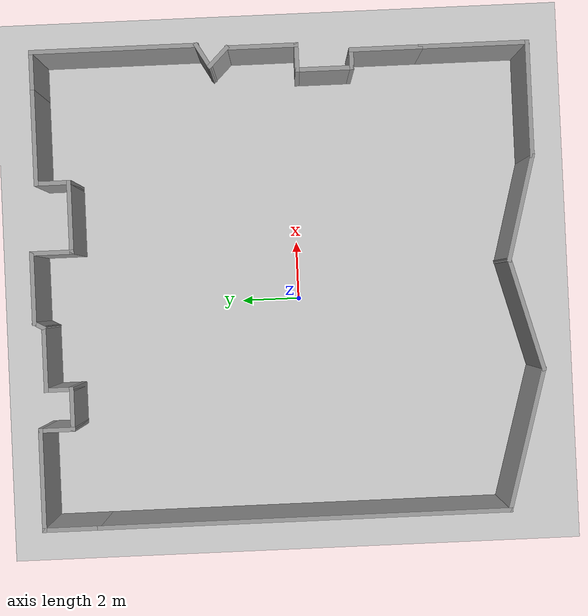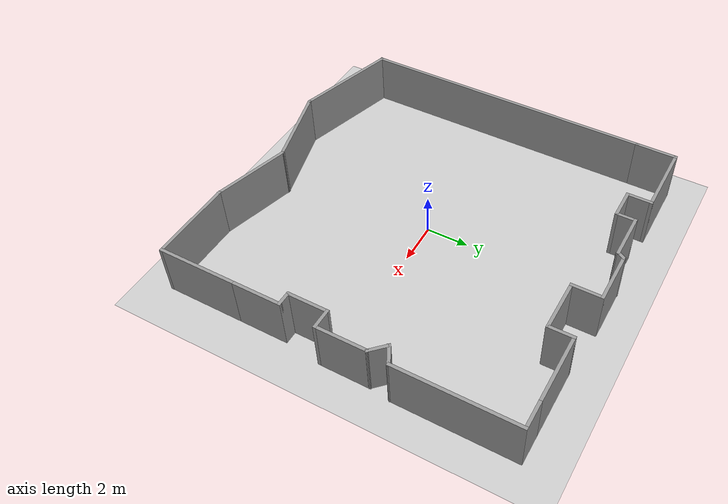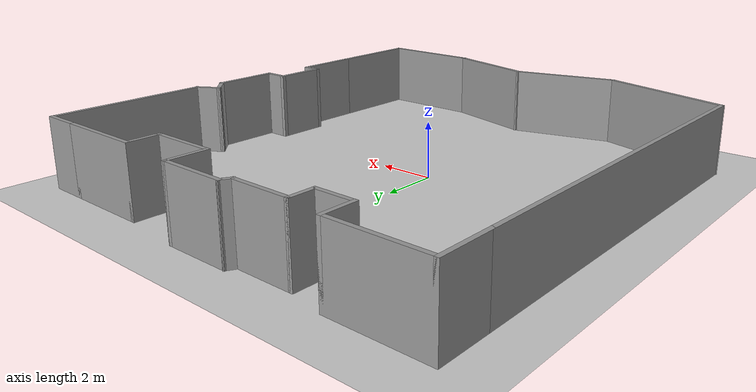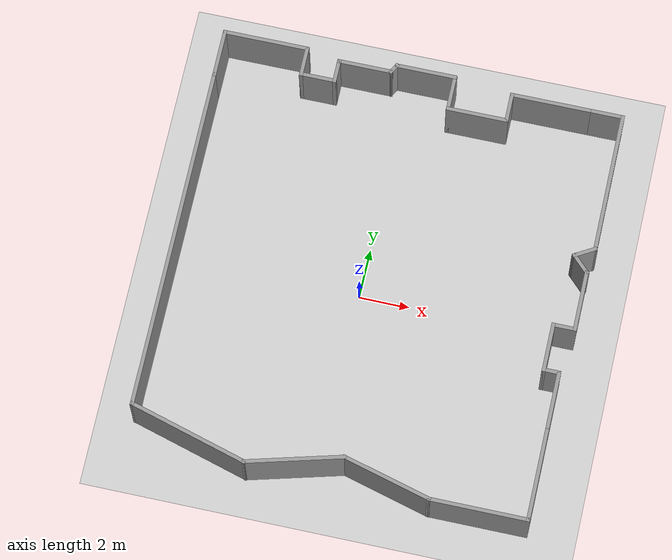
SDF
<sdf version="1.6">
 <world name="default">
  <light name="sun" type="directional">
   <pose>0 0 10 0 -0 0</pose>
   <diffuse>0.8 0.8 0.8 1</diffuse>
   <specular>0.2 0.2 0.2 1</specular>
   <attenuation>
    <range>1000</range>
    <constant>0.9</constant>
    <linear>0.01</linear>
    <quadratic>0.001</quadratic>
   </attenuation>
   <direction>-0.5 0.1 -0.9</direction>
  </light>
  <model name="ground_plane">
   <static>1</static>
   <link name="link">
    <collision name="collision">
     <geometry><plane><normal>0 0 1</normal><size>100 100</size></plane></geometry>
     <surface><friction><ode><mu>100</mu><mu2>50</mu2></ode></friction></surface>
    </collision>
    <visual name="visual">
     <cast_shadows>0</cast_shadows>
     <geometry><plane><normal>0 0 1</normal><size>100 100</size></plane></geometry>
     <material>
      <script><uri>file://media/materials/scripts/gazebo.material</uri><name>Gazebo/Grey</name></script>
     </material>
    </visual>
   </link>
  </model>
  <gravity>0 0 -9.8</gravity>
  <magnetic_field>6e-06 2.3e-05 -4.2e-05</magnetic_field>
  <atmosphere type="adiabatic"/>
  <physics name="default_physics" default="0" type="ode">
   <max_step_size>0.001</max_step_size>
   <real_time_factor>1</real_time_factor>
   <real_time_update_rate>1000</real_time_update_rate>
  </physics>
  <scene><ambient>0.4 0.4 0.4 1</ambient><background>0.7 0.7 0.7 1</background><shadows>1</shadows></scene>
  <audio><device>default</device></audio>
  <spherical_coordinates>
   <surface_model>EARTH_WGS84</surface_model>
   <latitude_deg>0</latitude_deg>
   <longitude_deg>0</longitude_deg>
   <elevation>0</elevation>
   <heading_deg>0</heading_deg>
  </spherical_coordinates>
  <model name="workplace">
   <pose>0.646695 0.419869 0 0 -0 0</pose>
   <link name="Wall_36">
    <collision name="Wall_36_Collision">
     <geometry><box><size>14 0.15 2.5</size></box></geometry>
     <pose>0 0 1.25 0 -0 0</pose>
    </collision>
    <visual name="Wall_36_Visual">
     <pose>0 0 1.25 0 -0 0</pose>
     <geometry><box><size>14 0.15 2.5</size></box></geometry>
     <material>
      <script><uri>file://media/materials/scripts/gazebo.material</uri><name>Gazebo/Grey</name></script>
      <ambient>1 1 1 1</ambient>
     </material>
     <meta><layer>0</layer></meta>
    </visual>
    <pose>-8.06738 -0.28762 0 0 -0 1.5708</pose>
   </link>
   <link name="Wall_37">
    <collision name="Wall_37_Collision">
     <geometry><box><size>2 0.15 2.5</size></box></geometry>
     <pose>0 0 1.25 0 -0 0</pose>
    </collision>
    <visual name="Wall_37_Visual">
     <pose>0 0 1.25 0 -0 0</pose>
     <geometry><box><size>2 0.15 2.5</size></box></geometry>
     <material>
      <script><uri>file://media/materials/scripts/gazebo.material</uri><name>Gazebo/Grey</name></script>
      <ambient>1 1 1 1</ambient>
     </material>
     <meta><layer>0</layer></meta>
    </visual>
    <pose>-8.06738 7.56238 0 0 -0 1.5708</pose>
   </link>
   <link name="Wall_38">
    <collision name="Wall_38_Collision">
     <geometry><box><size>3.5 0.15 2.5</size></box></geometry>
     <pose>0 0 1.25 0 -0 0</pose>
    </collision>
    <visual name="Wall_38_Visual">
     <pose>0 0 1.25 0 -0 0</pose>
     <geometry><box><size>3.5 0.15 2.5</size></box></geometry>
     <material>
      <script><uri>file://media/materials/scripts/gazebo.material</uri><name>Gazebo/Grey</name></script>
      <ambient>1 1 1 1</ambient>
     </material>
     <meta><layer>0</layer></meta>
    </visual>
    <pose>-6.39238 8.48738 0 0 -0 0</pose>
   </link>
   <link name="Wall_39">
    <collision name="Wall_39_Collision">
     <geometry><box><size>1.25 0.15 2.5</size></box></geometry>
     <pose>0 0 1.25 0 -0 0</pose>
    </collision>
    <visual name="Wall_39_Visual">
     <pose>0 0 1.25 0 -0 0</pose>
     <geometry><box><size>1.25 0.15 2.5</size></box></geometry>
     <material>
      <script><uri>file://media/materials/scripts/gazebo.material</uri><name>Gazebo/Grey</name></script>
      <ambient>1 1 1 1</ambient>
     </material>
     <meta><layer>0</layer></meta>
    </visual>
    <pose>-4.71739 7.93738 0 0 -0 -1.5708</pose>
   </link>
   <link name="Wall_40">
    <collision name="Wall_40_Collision">
     <geometry><box><size>1.5 0.15 2.5</size></box></geometry>
     <pose>0 0 1.25 0 -0 0</pose>
    </collision>
    <visual name="Wall_40_Visual">
     <pose>0 0 1.25 0 -0 0</pose>
     <geometry><box><size>1.5 0.15 2.5</size></box></geometry>
     <material>
      <script><uri>file://media/materials/scripts/gazebo.material</uri><name>Gazebo/Grey</name></script>
      <ambient>1 1 1 1</ambient>
     </material>
     <meta><layer>0</layer></meta>
    </visual>
    <pose>-4.04238 7.38738 0 0 -0 0</pose>
   </link>
   <link name="Wall_41">
    <collision name="Wall_41_Collision">
     <geometry><box><size>1 0.15 2.5</size></box></geometry>
     <pose>0 0 1.25 0 -0 0</pose>
    </collision>
    <visual name="Wall_41_Visual">
     <pose>0 0 1.25 0 -0 0</pose>
     <geometry><box><size>1 0.15 2.5</size></box></geometry>
     <material>
      <script><uri>file://media/materials/scripts/gazebo.material</uri><name>Gazebo/Grey</name></script>
      <ambient>1 1 1 1</ambient>
     </material>
     <meta><layer>0</layer></meta>
    </visual>
    <pose>-3.36739 7.81238 0 0 -0 1.5708</pose>
   </link>
   <link name="Wall_42">
    <collision name="Wall_42_Collision">
     <geometry><box><size>2.25 0.15 2.5</size></box></geometry>
     <pose>0 0 1.25 0 -0 0</pose>
    </collision>
    <visual name="Wall_42_Visual">
     <pose>0 0 1.25 0 -0 0</pose>
     <geometry><box><size>2.25 0.15 2.5</size></box></geometry>
     <material>
      <script><uri>file://media/materials/scripts/gazebo.material</uri><name>Gazebo/Grey</name></script>
      <ambient>1 1 1 1</ambient>
     </material>
     <meta><layer>0</layer></meta>
    </visual>
    <pose>-2.31738 8.23738 0 0 -0 0</pose>
   </link>
   <link name="Wall_43">
    <collision name="Wall_43_Collision">
     <geometry><box><size>0.5 0.15 2.5</size></box></geometry>
     <pose>0 0 1.25 0 -0 0</pose>
    </collision>
    <visual name="Wall_43_Visual">
     <pose>0 0 1.25 0 -0 0</pose>
     <geometry><box><size>0.5 0.15 2.5</size></box></geometry>
     <material>
      <script><uri>file://media/materials/scripts/gazebo.material</uri><name>Gazebo/Grey</name></script>
      <ambient>1 1 1 1</ambient>
     </material>
     <meta><layer>0</layer></meta>
    </visual>
    <pose>-1.17988 8.38893 0 0 -0 1.0472</pose>
   </link>
   <link name="Wall_44">
    <collision name="Wall_44_Collision">
     <geometry><box><size>2.5 0.15 2.5</size></box></geometry>
     <pose>0 0 1.25 0 -0 0</pose>
    </collision>
    <visual name="Wall_44_Visual">
     <pose>0 0 1.25 0 -0 0</pose>
     <geometry><box><size>2.5 0.15 2.5</size></box></geometry>
     <material>
      <script><uri>file://media/materials/scripts/gazebo.material</uri><name>Gazebo/Grey</name></script>
      <ambient>1 1 1 1</ambient>
     </material>
     <meta><layer>0</layer></meta>
    </visual>
    <pose>0.082615 8.54049 0 0 -0 0</pose>
   </link>
   <link name="Wall_45">
    <collision name="Wall_45_Collision">
     <geometry><box><size>1.5 0.15 2.5</size></box></geometry>
     <pose>0 0 1.25 0 -0 0</pose>
    </collision>
    <visual name="Wall_45_Visual">
     <pose>0 0 1.25 0 -0 0</pose>
     <geometry><box><size>1.5 0.15 2.5</size></box></geometry>
     <material>
      <script><uri>file://media/materials/scripts/gazebo.material</uri><name>Gazebo/Grey</name></script>
      <ambient>1 1 1 1</ambient>
     </material>
     <meta><layer>0</layer></meta>
    </visual>
    <pose>1.25762 7.86549 0 0 -0 -1.5708</pose>
   </link>
   <link name="Wall_46">
    <collision name="Wall_46_Collision">
     <geometry><box><size>2.5 0.15 2.5</size></box></geometry>
     <pose>0 0 1.25 0 -0 0</pose>
    </collision>
    <visual name="Wall_46_Visual">
     <pose>0 0 1.25 0 -0 0</pose>
     <geometry><box><size>2.5 0.15 2.5</size></box></geometry>
     <material>
      <script><uri>file://media/materials/scripts/gazebo.material</uri><name>Gazebo/Grey</name></script>
      <ambient>1 1 1 1</ambient>
     </material>
     <meta><layer>0</layer></meta>
    </visual>
    <pose>2.43262 7.19049 0 0 -0 0</pose>
   </link>
   <link name="Wall_47">
    <collision name="Wall_47_Collision">
     <geometry><box><size>1.25 0.15 2.5</size></box></geometry>
     <pose>0 0 1.25 0 -0 0</pose>
    </collision>
    <visual name="Wall_47_Visual">
     <pose>0 0 1.25 0 -0 0</pose>
     <geometry><box><size>1.25 0.15 2.5</size></box></geometry>
     <material>
      <script><uri>file://media/materials/scripts/gazebo.material</uri><name>Gazebo/Grey</name></script>
      <ambient>1 1 1 1</ambient>
     </material>
     <meta><layer>0</layer></meta>
    </visual>
    <pose>3.60762 7.74049 0 0 -0 1.5708</pose>
   </link>
   <link name="Wall_48">
    <collision name="Wall_48_Collision">
     <geometry><box><size>3.25 0.15 2.5</size></box></geometry>
     <pose>0 0 1.25 0 -0 0</pose>
    </collision>
    <visual name="Wall_48_Visual">
     <pose>0 0 1.25 0 -0 0</pose>
     <geometry><box><size>3.25 0.15 2.5</size></box></geometry>
     <material>
      <script><uri>file://media/materials/scripts/gazebo.material</uri><name>Gazebo/Grey</name></script>
      <ambient>1 1 1 1</ambient>
     </material>
     <meta><layer>0</layer></meta>
    </visual>
    <pose>5.15762 8.29049 0 0 -0 0</pose>
   </link>
   <link name="Wall_49">
    <collision name="Wall_49_Collision">
     <geometry><box><size>1.5 0.15 2.5</size></box></geometry>
     <pose>0 0 1.25 0 -0 0</pose>
    </collision>
    <visual name="Wall_49_Visual">
     <pose>0 0 1.25 0 -0 0</pose>
     <geometry><box><size>1.5 0.15 2.5</size></box></geometry>
     <material>
      <script><uri>file://media/materials/scripts/gazebo.material</uri><name>Gazebo/Grey</name></script>
      <ambient>1 1 1 1</ambient>
     </material>
     <meta><layer>0</layer></meta>
    </visual>
    <pose>7.38262 8.29049 0 0 -0 0</pose>
   </link>
   <link name="Wall_50">
    <collision name="Wall_50_Collision">
     <geometry><box><size>5.75 0.15 2.5</size></box></geometry>
     <pose>0 0 1.25 0 -0 0</pose>
    </collision>
    <visual name="Wall_50_Visual">
     <pose>0 0 1.25 0 -0 0</pose>
     <geometry><box><size>5.75 0.15 2.5</size></box></geometry>
     <material>
      <script><uri>file://media/materials/scripts/gazebo.material</uri><name>Gazebo/Grey</name></script>
      <ambient>1 1 1 1</ambient>
     </material>
     <meta><layer>0</layer></meta>
    </visual>
    <pose>8.05762 5.49049 0 0 -0 -1.5708</pose>
   </link>
   <link name="Wall_51">
    <collision name="Wall_51_Collision">
     <geometry><box><size>1 0.15 2.5</size></box></geometry>
     <pose>0 0 1.25 0 -0 0</pose>
    </collision>
    <visual name="Wall_51_Visual">
     <pose>0 0 1.25 0 -0 0</pose>
     <geometry><box><size>1 0.15 2.5</size></box></geometry>
     <material>
      <script><uri>file://media/materials/scripts/gazebo.material</uri><name>Gazebo/Grey</name></script>
      <ambient>1 1 1 1</ambient>
     </material>
     <meta><layer>0</layer></meta>
    </visual>
    <pose>7.68956 2.47799 0 0 -0 -2.61799</pose>
   </link>
   <link name="Wall_52">
    <collision name="Wall_52_Collision">
     <geometry><box><size>1 0.15 2.5</size></box></geometry>
     <pose>0 0 1.25 0 -0 0</pose>
    </collision>
    <visual name="Wall_52_Visual">
     <pose>0 0 1.25 0 -0 0</pose>
     <geometry><box><size>1 0.15 2.5</size></box></geometry>
     <material>
      <script><uri>file://media/materials/scripts/gazebo.material</uri><name>Gazebo/Grey</name></script>
      <ambient>1 1 1 1</ambient>
     </material>
     <meta><layer>0</layer></meta>
    </visual>
    <pose>7.62202 1.96497 0 0 -0 -0.785398</pose>
   </link>
   <link name="Wall_53">
    <collision name="Wall_53_Collision">
     <geometry><box><size>2.5 0.15 2.5</size></box></geometry>
     <pose>0 0 1.25 0 -0 0</pose>
    </collision>
    <visual name="Wall_53_Visual">
     <pose>0 0 1.25 0 -0 0</pose>
     <geometry><box><size>2.5 0.15 2.5</size></box></geometry>
     <material>
      <script><uri>file://media/materials/scripts/gazebo.material</uri><name>Gazebo/Grey</name></script>
      <ambient>1 1 1 1</ambient>
     </material>
     <meta><layer>0</layer></meta>
    </visual>
    <pose>7.92253 0.489448 0 0 -0 -1.5708</pose>
   </link>
   <link name="Wall_54">
    <collision name="Wall_54_Collision">
     <geometry><box><size>1 0.15 2.5</size></box></geometry>
     <pose>0 0 1.25 0 -0 0</pose>
    </collision>
    <visual name="Wall_54_Visual">
     <pose>0 0 1.25 0 -0 0</pose>
     <geometry><box><size>1 0.15 2.5</size></box></geometry>
     <material>
      <script><uri>file://media/materials/scripts/gazebo.material</uri><name>Gazebo/Grey</name></script>
      <ambient>1 1 1 1</ambient>
     </material>
     <meta><layer>0</layer></meta>
    </visual>
    <pose>7.49753 -0.685552 0 0 -0 3.14159</pose>
   </link>
   <link name="Wall_55">
    <collision name="Wall_55_Collision">
     <geometry><box><size>2 0.15 2.5</size></box></geometry>
     <pose>0 0 1.25 0 -0 0</pose>
    </collision>
    <visual name="Wall_55_Visual">
     <pose>0 0 1.25 0 -0 0</pose>
     <geometry><box><size>2 0.15 2.5</size></box></geometry>
     <material>
      <script><uri>file://media/materials/scripts/gazebo.material</uri><name>Gazebo/Grey</name></script>
      <ambient>1 1 1 1</ambient>
     </material>
     <meta><layer>0</layer></meta>
    </visual>
    <pose>7.07254 -1.61055 0 0 -0 -1.5708</pose>
   </link>
   <link name="Wall_56">
    <collision name="Wall_56_Collision">
     <geometry><box><size>0.75 0.15 2.5</size></box></geometry>
     <pose>0 0 1.25 0 -0 0</pose>
    </collision>
    <visual name="Wall_56_Visual">
     <pose>0 0 1.25 0 -0 0</pose>
     <geometry><box><size>0.75 0.15 2.5</size></box></geometry>
     <material>
      <script><uri>file://media/materials/scripts/gazebo.material</uri><name>Gazebo/Grey</name></script>
      <ambient>1 1 1 1</ambient>
     </material>
     <meta><layer>0</layer></meta>
    </visual>
    <pose>7.37253 -2.53555 0 0 -0 0</pose>
   </link>
   <link name="Wall_57">
    <collision name="Wall_57_Collision">
     <geometry><box><size>2.5 0.15 2.5</size></box></geometry>
     <pose>0 0 1.25 0 -0 0</pose>
    </collision>
    <visual name="Wall_57_Visual">
     <pose>0 0 1.25 0 -0 0</pose>
     <geometry><box><size>2.5 0.15 2.5</size></box></geometry>
     <material>
      <script><uri>file://media/materials/scripts/gazebo.material</uri><name>Gazebo/Grey</name></script>
      <ambient>1 1 1 1</ambient>
     </material>
     <meta><layer>0</layer></meta>
    </visual>
    <pose>7.67253 -3.71055 0 0 -0 -1.5708</pose>
   </link>
   <link name="Wall_58">
    <collision name="Wall_58_Collision">
     <geometry><box><size>3.75 0.15 2.5</size></box></geometry>
     <pose>0 0 1.25 0 -0 0</pose>
    </collision>
    <visual name="Wall_58_Visual">
     <pose>0 0 1.25 0 -0 0</pose>
     <geometry><box><size>3.75 0.15 2.5</size></box></geometry>
     <material>
      <script><uri>file://media/materials/scripts/gazebo.material</uri><name>Gazebo/Grey</name></script>
      <ambient>1 1 1 1</ambient>
     </material>
     <meta><layer>0</layer></meta>
    </visual>
    <pose>7.67253 -6.68555 0 0 -0 -1.5708</pose>
   </link>
   <link name="Wall_59">
    <collision name="Wall_59_Collision">
     <geometry><box><size>4 0.15 2.5</size></box></geometry>
     <pose>0 0 1.25 0 -0 0</pose>
    </collision>
    <visual name="Wall_59_Visual">
     <pose>0 0 1.25 0 -0 0</pose>
     <geometry><box><size>4 0.15 2.5</size></box></geometry>
     <material>
      <script><uri>file://media/materials/scripts/gazebo.material</uri><name>Gazebo/Grey</name></script>
      <ambient>1 1 1 1</ambient>
     </material>
     <meta><layer>0</layer></meta>
    </visual>
    <pose>5.74754 -8.48555 0 0 -0 3.14159</pose>
   </link>
   <link name="Wall_60">
    <collision name="Wall_60_Collision">
     <geometry><box><size>3.75 0.15 2.5</size></box></geometry>
     <pose>0 0 1.25 0 -0 0</pose>
    </collision>
    <visual name="Wall_60_Visual">
     <pose>0 0 1.25 0 -0 0</pose>
     <geometry><box><size>3.75 0.15 2.5</size></box></geometry>
     <material>
      <script><uri>file://media/materials/scripts/gazebo.material</uri><name>Gazebo/Grey</name></script>
      <ambient>1 1 1 1</ambient>
     </material>
     <meta><layer>0</layer></meta>
    </visual>
    <pose>2.08387 -8.01968 0 0 -0 2.87979</pose>
   </link>
   <link name="Wall_61">
    <collision name="Wall_61_Collision">
     <geometry><box><size>4 0.15 2.5</size></box></geometry>
     <pose>0 0 1.25 0 -0 0</pose>
    </collision>
    <visual name="Wall_61_Visual">
     <pose>0 0 1.25 0 -0 0</pose>
     <geometry><box><size>4 0.15 2.5</size></box></geometry>
     <material>
      <script><uri>file://media/materials/scripts/gazebo.material</uri><name>Gazebo/Grey</name></script>
      <ambient>1 1 1 1</ambient>
     </material>
     <meta><layer>0</layer></meta>
    </visual>
    <pose>-1.51421 -8.05203 0 0 -0 -2.87979</pose>
   </link>
   <link name="Wall_62">
    <collision name="Wall_62_Collision">
     <geometry><box><size>5.03065 0.15 2.5</size></box></geometry>
     <pose>0 0 1.25 0 -0 0</pose>
    </collision>
    <visual name="Wall_62_Visual">
     <pose>0 0 1.25 0 -0 0</pose>
     <geometry><box><size>5.03065 0.15 2.5</size></box></geometry>
     <material>
      <script><uri>file://media/materials/scripts/gazebo.material</uri><name>Gazebo/Grey</name></script>
      <ambient>1 1 1 1</ambient>
     </material>
     <meta><layer>0</layer></meta>
    </visual>
    <pose>-5.7205 -7.88144 0 0 -0 2.86397</pose>
   </link>
   <static>1</static>
  </model>
 </world>
</sdf>
